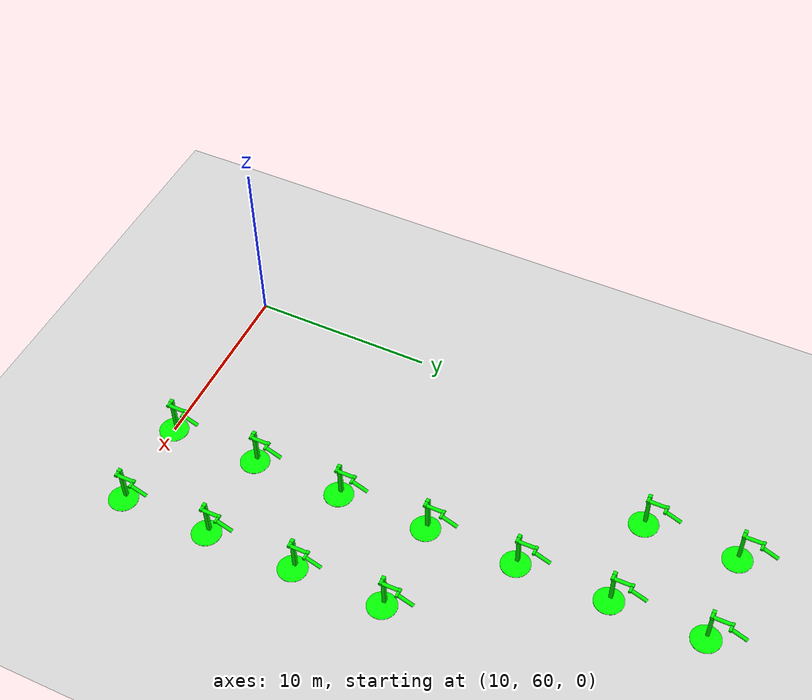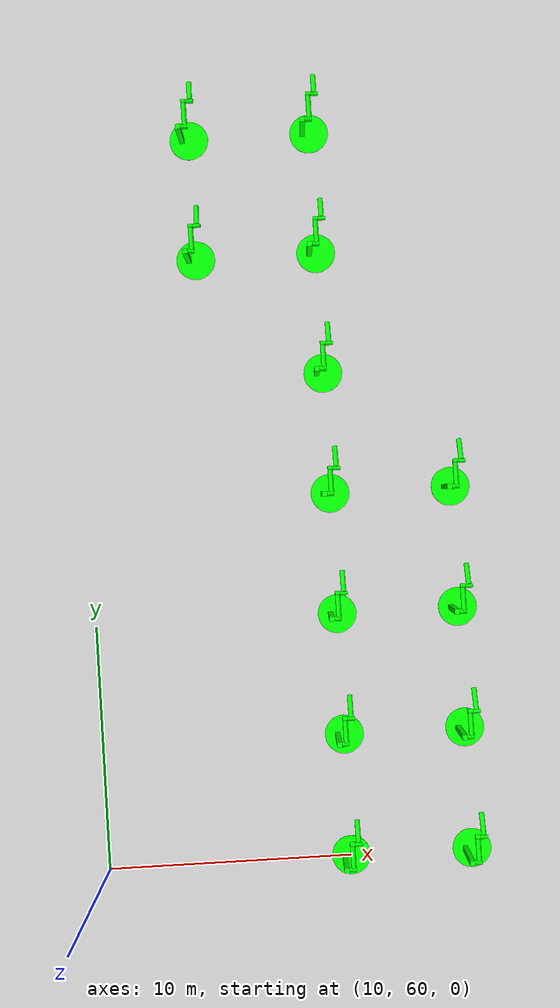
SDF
<sdf version="1.6">
 <world name="double_pendulums">
  <model name="ground_plane">
   <static>true</static>
   <link name="link">
    <collision name="collision">
     <geometry><plane><normal>0 0 1</normal><size>100 100</size></plane></geometry>
    </collision>
    <visual name="visual">
     <geometry><plane><normal>0 0 1</normal><size>100 100</size></plane></geometry>
     <material>
      <ambient>0.8 0.8 0.8 1</ambient>
      <diffuse>0.8 0.8 0.8 1</diffuse>
      <specular>0.8 0.8 0.8 1</specular>
     </material>
    </visual>
   </link>
  </model>
  <model name="dbl_pendulum_314">
   <pose>20 60 0 0 0 0</pose>
   <link name="base">
    <inertial><mass>100</mass></inertial>
    <visual name="vis_plate_on_ground">
     <pose>0 0 0.01 0 0 0</pose>
     <geometry><cylinder><radius>0.8</radius><length>0.02</length></cylinder></geometry>
     <material><ambient>0 1 0 1</ambient><diffuse>0 1 0 1</diffuse><specular>0 1 0 1</specular></material>
    </visual>
    <visual name="vis_pole">
     <pose>-0.275 0 1.1 0 0 0</pose>
     <geometry><box><size>0.2 0.2 2.2</size></box></geometry>
     <material><ambient>0 1 0 1</ambient><diffuse>0 1 0 1</diffuse><specular>0 1 0 1</specular></material>
    </visual>
    <collision name="col_plate_on_ground">
     <pose>0 0 0.01 0 0 0</pose>
     <geometry><cylinder><radius>0.8</radius><length>0.02</length></cylinder></geometry>
    </collision>
    <collision name="col_pole">
     <pose>-0.275 0 1.1 0 0 0</pose>
     <geometry><box><size>0.2 0.2 2.2</size></box></geometry>
    </collision>
   </link>
   <link name="upper_link">
    <pose>0 0 2.1 -1.5708 0 0</pose>
    <inertial><pose>0 0 0.5 0 0 0</pose></inertial>
    <visual name="vis_upper_joint">
     <pose>-0.05 0 0 0 1.5708 0</pose>
     <geometry><cylinder><radius>0.1</radius><length>0.3</length></cylinder></geometry>
     <material><ambient>0 1 0 1</ambient><diffuse>0 1 0 1</diffuse><specular>0 1 0 1</specular></material>
    </visual>
    <visual name="vis_lower_joint">
     <pose>0 0 1.0 0 1.5708 0</pose>
     <geometry><cylinder><radius>0.1</radius><length>0.2</length></cylinder></geometry>
     <material><ambient>0 1 0 1</ambient><diffuse>0 1 0 1</diffuse><specular>0 1 0 1</specular></material>
    </visual>
    <visual name="vis_cylinder">
     <pose>0 0 0.5 0 0 0</pose>
     <geometry><cylinder><radius>0.1</radius><length>0.9</length></cylinder></geometry>
     <material><ambient>0 1 0 1</ambient><diffuse>0 1 0 1</diffuse><specular>0 1 0 1</specular></material>
    </visual>
    <collision name="col_upper_joint">
     <pose>-0.05 0 0 0 1.5708 0</pose>
     <geometry><cylinder><radius>0.1</radius><length>0.3</length></cylinder></geometry>
    </collision>
    <collision name="col_lower_joint">
     <pose>0 0 1.0 0 1.5708 0</pose>
     <geometry><cylinder><radius>0.1</radius><length>0.2</length></cylinder></geometry>
    </collision>
    <collision name="col_cylinder">
     <pose>0 0 0.5 0 0 0</pose>
     <geometry><cylinder><radius>0.1</radius><length>0.9</length></cylinder></geometry>
    </collision>
   </link>
   <link name="lower_link">
    <pose>0.25 1.0 2.1 -2 0 0</pose>
    <inertial><pose>0 0 0.5 0 0 0</pose></inertial>
    <visual name="vis_lower_joint">
     <pose>0 0 0 0 1.5708 0</pose>
     <geometry><cylinder><radius>0.08</radius><length>0.3</length></cylinder></geometry>
     <material><ambient>0 1 0 1</ambient><diffuse>0 1 0 1</diffuse><specular>0 1 0 1</specular></material>
    </visual>
    <visual name="vis_cylinder">
     <pose>0 0 0.5 0 0 0</pose>
     <geometry><cylinder><radius>0.1</radius><length>0.9</length></cylinder></geometry>
     <material><ambient>0 1 0 1</ambient><diffuse>0 1 0 1</diffuse><specular>0 1 0 1</specular></material>
    </visual>
    <collision name="col_lower_joint">
     <pose>0 0 0 0 1.5708 0</pose>
     <geometry><cylinder><radius>0.08</radius><length>0.3</length></cylinder></geometry>
    </collision>
    <collision name="col_cylinder">
     <pose>0 0 0.5 0 0 0</pose>
     <geometry><cylinder><radius>0.1</radius><length>0.9</length></cylinder></geometry>
    </collision>
   </link>
   <joint name="upper_joint" type="revolute">
    <parent>base</parent>
    <child>upper_link</child>
    <axis><xyz>1.0 0 0</xyz></axis>
   </joint>
   <joint name="lower_joint" type="revolute">
    <parent>upper_link</parent>
    <child>lower_link</child>
    <axis><xyz>1.0 0 0</xyz></axis>
   </joint>
  </model>
  <model name="dbl_pendulum_315">
   <pose>25 60 0 0 0 0</pose>
   <link name="base">
    <inertial><mass>100</mass></inertial>
    <visual name="vis_plate_on_ground">
     <pose>0 0 0.01 0 0 0</pose>
     <geometry><cylinder><radius>0.8</radius><length>0.02</length></cylinder></geometry>
     <material><ambient>0 1 0 1</ambient><diffuse>0 1 0 1</diffuse><specular>0 1 0 1</specular></material>
    </visual>
    <visual name="vis_pole">
     <pose>-0.275 0 1.1 0 0 0</pose>
     <geometry><box><size>0.2 0.2 2.2</size></box></geometry>
     <material><ambient>0 1 0 1</ambient><diffuse>0 1 0 1</diffuse><specular>0 1 0 1</specular></material>
    </visual>
    <collision name="col_plate_on_ground">
     <pose>0 0 0.01 0 0 0</pose>
     <geometry><cylinder><radius>0.8</radius><length>0.02</length></cylinder></geometry>
    </collision>
    <collision name="col_pole">
     <pose>-0.275 0 1.1 0 0 0</pose>
     <geometry><box><size>0.2 0.2 2.2</size></box></geometry>
    </collision>
   </link>
   <link name="upper_link">
    <pose>0 0 2.1 -1.5708 0 0</pose>
    <inertial><pose>0 0 0.5 0 0 0</pose></inertial>
    <visual name="vis_upper_joint">
     <pose>-0.05 0 0 0 1.5708 0</pose>
     <geometry><cylinder><radius>0.1</radius><length>0.3</length></cylinder></geometry>
     <material><ambient>0 1 0 1</ambient><diffuse>0 1 0 1</diffuse><specular>0 1 0 1</specular></material>
    </visual>
    <visual name="vis_lower_joint">
     <pose>0 0 1.0 0 1.5708 0</pose>
     <geometry><cylinder><radius>0.1</radius><length>0.2</length></cylinder></geometry>
     <material><ambient>0 1 0 1</ambient><diffuse>0 1 0 1</diffuse><specular>0 1 0 1</specular></material>
    </visual>
    <visual name="vis_cylinder">
     <pose>0 0 0.5 0 0 0</pose>
     <geometry><cylinder><radius>0.1</radius><length>0.9</length></cylinder></geometry>
     <material><ambient>0 1 0 1</ambient><diffuse>0 1 0 1</diffuse><specular>0 1 0 1</specular></material>
    </visual>
    <collision name="col_upper_joint">
     <pose>-0.05 0 0 0 1.5708 0</pose>
     <geometry><cylinder><radius>0.1</radius><length>0.3</length></cylinder></geometry>
    </collision>
    <collision name="col_lower_joint">
     <pose>0 0 1.0 0 1.5708 0</pose>
     <geometry><cylinder><radius>0.1</radius><length>0.2</length></cylinder></geometry>
    </collision>
    <collision name="col_cylinder">
     <pose>0 0 0.5 0 0 0</pose>
     <geometry><cylinder><radius>0.1</radius><length>0.9</length></cylinder></geometry>
    </collision>
   </link>
   <link name="lower_link">
    <pose>0.25 1.0 2.1 -2 0 0</pose>
    <inertial><pose>0 0 0.5 0 0 0</pose></inertial>
    <visual name="vis_lower_joint">
     <pose>0 0 0 0 1.5708 0</pose>
     <geometry><cylinder><radius>0.08</radius><length>0.3</length></cylinder></geometry>
     <material><ambient>0 1 0 1</ambient><diffuse>0 1 0 1</diffuse><specular>0 1 0 1</specular></material>
    </visual>
    <visual name="vis_cylinder">
     <pose>0 0 0.5 0 0 0</pose>
     <geometry><cylinder><radius>0.1</radius><length>0.9</length></cylinder></geometry>
     <material><ambient>0 1 0 1</ambient><diffuse>0 1 0 1</diffuse><specular>0 1 0 1</specular></material>
    </visual>
    <collision name="col_lower_joint">
     <pose>0 0 0 0 1.5708 0</pose>
     <geometry><cylinder><radius>0.08</radius><length>0.3</length></cylinder></geometry>
    </collision>
    <collision name="col_cylinder">
     <pose>0 0 0.5 0 0 0</pose>
     <geometry><cylinder><radius>0.1</radius><length>0.9</length></cylinder></geometry>
    </collision>
   </link>
   <joint name="upper_joint" type="revolute">
    <parent>base</parent>
    <child>upper_link</child>
    <axis><xyz>1.0 0 0</xyz></axis>
   </joint>
   <joint name="lower_joint" type="revolute">
    <parent>upper_link</parent>
    <child>lower_link</child>
    <axis><xyz>1.0 0 0</xyz></axis>
   </joint>
  </model>
  <model name="dbl_pendulum_339">
   <pose>20 65 0 0 0 0</pose>
   <link name="base">
    <inertial><mass>100</mass></inertial>
    <visual name="vis_plate_on_ground">
     <pose>0 0 0.01 0 0 0</pose>
     <geometry><cylinder><radius>0.8</radius><length>0.02</length></cylinder></geometry>
     <material><ambient>0 1 0 1</ambient><diffuse>0 1 0 1</diffuse><specular>0 1 0 1</specular></material>
    </visual>
    <visual name="vis_pole">
     <pose>-0.275 0 1.1 0 0 0</pose>
     <geometry><box><size>0.2 0.2 2.2</size></box></geometry>
     <material><ambient>0 1 0 1</ambient><diffuse>0 1 0 1</diffuse><specular>0 1 0 1</specular></material>
    </visual>
    <collision name="col_plate_on_ground">
     <pose>0 0 0.01 0 0 0</pose>
     <geometry><cylinder><radius>0.8</radius><length>0.02</length></cylinder></geometry>
    </collision>
    <collision name="col_pole">
     <pose>-0.275 0 1.1 0 0 0</pose>
     <geometry><box><size>0.2 0.2 2.2</size></box></geometry>
    </collision>
   </link>
   <link name="upper_link">
    <pose>0 0 2.1 -1.5708 0 0</pose>
    <inertial><pose>0 0 0.5 0 0 0</pose></inertial>
    <visual name="vis_upper_joint">
     <pose>-0.05 0 0 0 1.5708 0</pose>
     <geometry><cylinder><radius>0.1</radius><length>0.3</length></cylinder></geometry>
     <material><ambient>0 1 0 1</ambient><diffuse>0 1 0 1</diffuse><specular>0 1 0 1</specular></material>
    </visual>
    <visual name="vis_lower_joint">
     <pose>0 0 1.0 0 1.5708 0</pose>
     <geometry><cylinder><radius>0.1</radius><length>0.2</length></cylinder></geometry>
     <material><ambient>0 1 0 1</ambient><diffuse>0 1 0 1</diffuse><specular>0 1 0 1</specular></material>
    </visual>
    <visual name="vis_cylinder">
     <pose>0 0 0.5 0 0 0</pose>
     <geometry><cylinder><radius>0.1</radius><length>0.9</length></cylinder></geometry>
     <material><ambient>0 1 0 1</ambient><diffuse>0 1 0 1</diffuse><specular>0 1 0 1</specular></material>
    </visual>
    <collision name="col_upper_joint">
     <pose>-0.05 0 0 0 1.5708 0</pose>
     <geometry><cylinder><radius>0.1</radius><length>0.3</length></cylinder></geometry>
    </collision>
    <collision name="col_lower_joint">
     <pose>0 0 1.0 0 1.5708 0</pose>
     <geometry><cylinder><radius>0.1</radius><length>0.2</length></cylinder></geometry>
    </collision>
    <collision name="col_cylinder">
     <pose>0 0 0.5 0 0 0</pose>
     <geometry><cylinder><radius>0.1</radius><length>0.9</length></cylinder></geometry>
    </collision>
   </link>
   <link name="lower_link">
    <pose>0.25 1.0 2.1 -2 0 0</pose>
    <inertial><pose>0 0 0.5 0 0 0</pose></inertial>
    <visual name="vis_lower_joint">
     <pose>0 0 0 0 1.5708 0</pose>
     <geometry><cylinder><radius>0.08</radius><length>0.3</length></cylinder></geometry>
     <material><ambient>0 1 0 1</ambient><diffuse>0 1 0 1</diffuse><specular>0 1 0 1</specular></material>
    </visual>
    <visual name="vis_cylinder">
     <pose>0 0 0.5 0 0 0</pose>
     <geometry><cylinder><radius>0.1</radius><length>0.9</length></cylinder></geometry>
     <material><ambient>0 1 0 1</ambient><diffuse>0 1 0 1</diffuse><specular>0 1 0 1</specular></material>
    </visual>
    <collision name="col_lower_joint">
     <pose>0 0 0 0 1.5708 0</pose>
     <geometry><cylinder><radius>0.08</radius><length>0.3</length></cylinder></geometry>
    </collision>
    <collision name="col_cylinder">
     <pose>0 0 0.5 0 0 0</pose>
     <geometry><cylinder><radius>0.1</radius><length>0.9</length></cylinder></geometry>
    </collision>
   </link>
   <joint name="upper_joint" type="revolute">
    <parent>base</parent>
    <child>upper_link</child>
    <axis><xyz>1.0 0 0</xyz></axis>
   </joint>
   <joint name="lower_joint" type="revolute">
    <parent>upper_link</parent>
    <child>lower_link</child>
    <axis><xyz>1.0 0 0</xyz></axis>
   </joint>
  </model>
  <model name="dbl_pendulum_340">
   <pose>25 65 0 0 0 0</pose>
   <link name="base">
    <inertial><mass>100</mass></inertial>
    <visual name="vis_plate_on_ground">
     <pose>0 0 0.01 0 0 0</pose>
     <geometry><cylinder><radius>0.8</radius><length>0.02</length></cylinder></geometry>
     <material><ambient>0 1 0 1</ambient><diffuse>0 1 0 1</diffuse><specular>0 1 0 1</specular></material>
    </visual>
    <visual name="vis_pole">
     <pose>-0.275 0 1.1 0 0 0</pose>
     <geometry><box><size>0.2 0.2 2.2</size></box></geometry>
     <material><ambient>0 1 0 1</ambient><diffuse>0 1 0 1</diffuse><specular>0 1 0 1</specular></material>
    </visual>
    <collision name="col_plate_on_ground">
     <pose>0 0 0.01 0 0 0</pose>
     <geometry><cylinder><radius>0.8</radius><length>0.02</length></cylinder></geometry>
    </collision>
    <collision name="col_pole">
     <pose>-0.275 0 1.1 0 0 0</pose>
     <geometry><box><size>0.2 0.2 2.2</size></box></geometry>
    </collision>
   </link>
   <link name="upper_link">
    <pose>0 0 2.1 -1.5708 0 0</pose>
    <inertial><pose>0 0 0.5 0 0 0</pose></inertial>
    <visual name="vis_upper_joint">
     <pose>-0.05 0 0 0 1.5708 0</pose>
     <geometry><cylinder><radius>0.1</radius><length>0.3</length></cylinder></geometry>
     <material><ambient>0 1 0 1</ambient><diffuse>0 1 0 1</diffuse><specular>0 1 0 1</specular></material>
    </visual>
    <visual name="vis_lower_joint">
     <pose>0 0 1.0 0 1.5708 0</pose>
     <geometry><cylinder><radius>0.1</radius><length>0.2</length></cylinder></geometry>
     <material><ambient>0 1 0 1</ambient><diffuse>0 1 0 1</diffuse><specular>0 1 0 1</specular></material>
    </visual>
    <visual name="vis_cylinder">
     <pose>0 0 0.5 0 0 0</pose>
     <geometry><cylinder><radius>0.1</radius><length>0.9</length></cylinder></geometry>
     <material><ambient>0 1 0 1</ambient><diffuse>0 1 0 1</diffuse><specular>0 1 0 1</specular></material>
    </visual>
    <collision name="col_upper_joint">
     <pose>-0.05 0 0 0 1.5708 0</pose>
     <geometry><cylinder><radius>0.1</radius><length>0.3</length></cylinder></geometry>
    </collision>
    <collision name="col_lower_joint">
     <pose>0 0 1.0 0 1.5708 0</pose>
     <geometry><cylinder><radius>0.1</radius><length>0.2</length></cylinder></geometry>
    </collision>
    <collision name="col_cylinder">
     <pose>0 0 0.5 0 0 0</pose>
     <geometry><cylinder><radius>0.1</radius><length>0.9</length></cylinder></geometry>
    </collision>
   </link>
   <link name="lower_link">
    <pose>0.25 1.0 2.1 -2 0 0</pose>
    <inertial><pose>0 0 0.5 0 0 0</pose></inertial>
    <visual name="vis_lower_joint">
     <pose>0 0 0 0 1.5708 0</pose>
     <geometry><cylinder><radius>0.08</radius><length>0.3</length></cylinder></geometry>
     <material><ambient>0 1 0 1</ambient><diffuse>0 1 0 1</diffuse><specular>0 1 0 1</specular></material>
    </visual>
    <visual name="vis_cylinder">
     <pose>0 0 0.5 0 0 0</pose>
     <geometry><cylinder><radius>0.1</radius><length>0.9</length></cylinder></geometry>
     <material><ambient>0 1 0 1</ambient><diffuse>0 1 0 1</diffuse><specular>0 1 0 1</specular></material>
    </visual>
    <collision name="col_lower_joint">
     <pose>0 0 0 0 1.5708 0</pose>
     <geometry><cylinder><radius>0.08</radius><length>0.3</length></cylinder></geometry>
    </collision>
    <collision name="col_cylinder">
     <pose>0 0 0.5 0 0 0</pose>
     <geometry><cylinder><radius>0.1</radius><length>0.9</length></cylinder></geometry>
    </collision>
   </link>
   <joint name="upper_joint" type="revolute">
    <parent>base</parent>
    <child>upper_link</child>
    <axis><xyz>1.0 0 0</xyz></axis>
   </joint>
   <joint name="lower_joint" type="revolute">
    <parent>upper_link</parent>
    <child>lower_link</child>
    <axis><xyz>1.0 0 0</xyz></axis>
   </joint>
  </model>
  <model name="dbl_pendulum_364">
   <pose>20 70 0 0 0 0</pose>
   <link name="base">
    <inertial><mass>100</mass></inertial>
    <visual name="vis_plate_on_ground">
     <pose>0 0 0.01 0 0 0</pose>
     <geometry><cylinder><radius>0.8</radius><length>0.02</length></cylinder></geometry>
     <material><ambient>0 1 0 1</ambient><diffuse>0 1 0 1</diffuse><specular>0 1 0 1</specular></material>
    </visual>
    <visual name="vis_pole">
     <pose>-0.275 0 1.1 0 0 0</pose>
     <geometry><box><size>0.2 0.2 2.2</size></box></geometry>
     <material><ambient>0 1 0 1</ambient><diffuse>0 1 0 1</diffuse><specular>0 1 0 1</specular></material>
    </visual>
    <collision name="col_plate_on_ground">
     <pose>0 0 0.01 0 0 0</pose>
     <geometry><cylinder><radius>0.8</radius><length>0.02</length></cylinder></geometry>
    </collision>
    <collision name="col_pole">
     <pose>-0.275 0 1.1 0 0 0</pose>
     <geometry><box><size>0.2 0.2 2.2</size></box></geometry>
    </collision>
   </link>
   <link name="upper_link">
    <pose>0 0 2.1 -1.5708 0 0</pose>
    <inertial><pose>0 0 0.5 0 0 0</pose></inertial>
    <visual name="vis_upper_joint">
     <pose>-0.05 0 0 0 1.5708 0</pose>
     <geometry><cylinder><radius>0.1</radius><length>0.3</length></cylinder></geometry>
     <material><ambient>0 1 0 1</ambient><diffuse>0 1 0 1</diffuse><specular>0 1 0 1</specular></material>
    </visual>
    <visual name="vis_lower_joint">
     <pose>0 0 1.0 0 1.5708 0</pose>
     <geometry><cylinder><radius>0.1</radius><length>0.2</length></cylinder></geometry>
     <material><ambient>0 1 0 1</ambient><diffuse>0 1 0 1</diffuse><specular>0 1 0 1</specular></material>
    </visual>
    <visual name="vis_cylinder">
     <pose>0 0 0.5 0 0 0</pose>
     <geometry><cylinder><radius>0.1</radius><length>0.9</length></cylinder></geometry>
     <material><ambient>0 1 0 1</ambient><diffuse>0 1 0 1</diffuse><specular>0 1 0 1</specular></material>
    </visual>
    <collision name="col_upper_joint">
     <pose>-0.05 0 0 0 1.5708 0</pose>
     <geometry><cylinder><radius>0.1</radius><length>0.3</length></cylinder></geometry>
    </collision>
    <collision name="col_lower_joint">
     <pose>0 0 1.0 0 1.5708 0</pose>
     <geometry><cylinder><radius>0.1</radius><length>0.2</length></cylinder></geometry>
    </collision>
    <collision name="col_cylinder">
     <pose>0 0 0.5 0 0 0</pose>
     <geometry><cylinder><radius>0.1</radius><length>0.9</length></cylinder></geometry>
    </collision>
   </link>
   <link name="lower_link">
    <pose>0.25 1.0 2.1 -2 0 0</pose>
    <inertial><pose>0 0 0.5 0 0 0</pose></inertial>
    <visual name="vis_lower_joint">
     <pose>0 0 0 0 1.5708 0</pose>
     <geometry><cylinder><radius>0.08</radius><length>0.3</length></cylinder></geometry>
     <material><ambient>0 1 0 1</ambient><diffuse>0 1 0 1</diffuse><specular>0 1 0 1</specular></material>
    </visual>
    <visual name="vis_cylinder">
     <pose>0 0 0.5 0 0 0</pose>
     <geometry><cylinder><radius>0.1</radius><length>0.9</length></cylinder></geometry>
     <material><ambient>0 1 0 1</ambient><diffuse>0 1 0 1</diffuse><specular>0 1 0 1</specular></material>
    </visual>
    <collision name="col_lower_joint">
     <pose>0 0 0 0 1.5708 0</pose>
     <geometry><cylinder><radius>0.08</radius><length>0.3</length></cylinder></geometry>
    </collision>
    <collision name="col_cylinder">
     <pose>0 0 0.5 0 0 0</pose>
     <geometry><cylinder><radius>0.1</radius><length>0.9</length></cylinder></geometry>
    </collision>
   </link>
   <joint name="upper_joint" type="revolute">
    <parent>base</parent>
    <child>upper_link</child>
    <axis><xyz>1.0 0 0</xyz></axis>
   </joint>
   <joint name="lower_joint" type="revolute">
    <parent>upper_link</parent>
    <child>lower_link</child>
    <axis><xyz>1.0 0 0</xyz></axis>
   </joint>
  </model>
  <model name="dbl_pendulum_365">
   <pose>25 70 0 0 0 0</pose>
   <link name="base">
    <inertial><mass>100</mass></inertial>
    <visual name="vis_plate_on_ground">
     <pose>0 0 0.01 0 0 0</pose>
     <geometry><cylinder><radius>0.8</radius><length>0.02</length></cylinder></geometry>
     <material><ambient>0 1 0 1</ambient><diffuse>0 1 0 1</diffuse><specular>0 1 0 1</specular></material>
    </visual>
    <visual name="vis_pole">
     <pose>-0.275 0 1.1 0 0 0</pose>
     <geometry><box><size>0.2 0.2 2.2</size></box></geometry>
     <material><ambient>0 1 0 1</ambient><diffuse>0 1 0 1</diffuse><specular>0 1 0 1</specular></material>
    </visual>
    <collision name="col_plate_on_ground">
     <pose>0 0 0.01 0 0 0</pose>
     <geometry><cylinder><radius>0.8</radius><length>0.02</length></cylinder></geometry>
    </collision>
    <collision name="col_pole">
     <pose>-0.275 0 1.1 0 0 0</pose>
     <geometry><box><size>0.2 0.2 2.2</size></box></geometry>
    </collision>
   </link>
   <link name="upper_link">
    <pose>0 0 2.1 -1.5708 0 0</pose>
    <inertial><pose>0 0 0.5 0 0 0</pose></inertial>
    <visual name="vis_upper_joint">
     <pose>-0.05 0 0 0 1.5708 0</pose>
     <geometry><cylinder><radius>0.1</radius><length>0.3</length></cylinder></geometry>
     <material><ambient>0 1 0 1</ambient><diffuse>0 1 0 1</diffuse><specular>0 1 0 1</specular></material>
    </visual>
    <visual name="vis_lower_joint">
     <pose>0 0 1.0 0 1.5708 0</pose>
     <geometry><cylinder><radius>0.1</radius><length>0.2</length></cylinder></geometry>
     <material><ambient>0 1 0 1</ambient><diffuse>0 1 0 1</diffuse><specular>0 1 0 1</specular></material>
    </visual>
    <visual name="vis_cylinder">
     <pose>0 0 0.5 0 0 0</pose>
     <geometry><cylinder><radius>0.1</radius><length>0.9</length></cylinder></geometry>
     <material><ambient>0 1 0 1</ambient><diffuse>0 1 0 1</diffuse><specular>0 1 0 1</specular></material>
    </visual>
    <collision name="col_upper_joint">
     <pose>-0.05 0 0 0 1.5708 0</pose>
     <geometry><cylinder><radius>0.1</radius><length>0.3</length></cylinder></geometry>
    </collision>
    <collision name="col_lower_joint">
     <pose>0 0 1.0 0 1.5708 0</pose>
     <geometry><cylinder><radius>0.1</radius><length>0.2</length></cylinder></geometry>
    </collision>
    <collision name="col_cylinder">
     <pose>0 0 0.5 0 0 0</pose>
     <geometry><cylinder><radius>0.1</radius><length>0.9</length></cylinder></geometry>
    </collision>
   </link>
   <link name="lower_link">
    <pose>0.25 1.0 2.1 -2 0 0</pose>
    <inertial><pose>0 0 0.5 0 0 0</pose></inertial>
    <visual name="vis_lower_joint">
     <pose>0 0 0 0 1.5708 0</pose>
     <geometry><cylinder><radius>0.08</radius><length>0.3</length></cylinder></geometry>
     <material><ambient>0 1 0 1</ambient><diffuse>0 1 0 1</diffuse><specular>0 1 0 1</specular></material>
    </visual>
    <visual name="vis_cylinder">
     <pose>0 0 0.5 0 0 0</pose>
     <geometry><cylinder><radius>0.1</radius><length>0.9</length></cylinder></geometry>
     <material><ambient>0 1 0 1</ambient><diffuse>0 1 0 1</diffuse><specular>0 1 0 1</specular></material>
    </visual>
    <collision name="col_lower_joint">
     <pose>0 0 0 0 1.5708 0</pose>
     <geometry><cylinder><radius>0.08</radius><length>0.3</length></cylinder></geometry>
    </collision>
    <collision name="col_cylinder">
     <pose>0 0 0.5 0 0 0</pose>
     <geometry><cylinder><radius>0.1</radius><length>0.9</length></cylinder></geometry>
    </collision>
   </link>
   <joint name="upper_joint" type="revolute">
    <parent>base</parent>
    <child>upper_link</child>
    <axis><xyz>1.0 0 0</xyz></axis>
   </joint>
   <joint name="lower_joint" type="revolute">
    <parent>upper_link</parent>
    <child>lower_link</child>
    <axis><xyz>1.0 0 0</xyz></axis>
   </joint>
  </model>
  <model name="dbl_pendulum_389">
   <pose>20 75 0 0 0 0</pose>
   <link name="base">
    <inertial><mass>100</mass></inertial>
    <visual name="vis_plate_on_ground">
     <pose>0 0 0.01 0 0 0</pose>
     <geometry><cylinder><radius>0.8</radius><length>0.02</length></cylinder></geometry>
     <material><ambient>0 1 0 1</ambient><diffuse>0 1 0 1</diffuse><specular>0 1 0 1</specular></material>
    </visual>
    <visual name="vis_pole">
     <pose>-0.275 0 1.1 0 0 0</pose>
     <geometry><box><size>0.2 0.2 2.2</size></box></geometry>
     <material><ambient>0 1 0 1</ambient><diffuse>0 1 0 1</diffuse><specular>0 1 0 1</specular></material>
    </visual>
    <collision name="col_plate_on_ground">
     <pose>0 0 0.01 0 0 0</pose>
     <geometry><cylinder><radius>0.8</radius><length>0.02</length></cylinder></geometry>
    </collision>
    <collision name="col_pole">
     <pose>-0.275 0 1.1 0 0 0</pose>
     <geometry><box><size>0.2 0.2 2.2</size></box></geometry>
    </collision>
   </link>
   <link name="upper_link">
    <pose>0 0 2.1 -1.5708 0 0</pose>
    <inertial><pose>0 0 0.5 0 0 0</pose></inertial>
    <visual name="vis_upper_joint">
     <pose>-0.05 0 0 0 1.5708 0</pose>
     <geometry><cylinder><radius>0.1</radius><length>0.3</length></cylinder></geometry>
     <material><ambient>0 1 0 1</ambient><diffuse>0 1 0 1</diffuse><specular>0 1 0 1</specular></material>
    </visual>
    <visual name="vis_lower_joint">
     <pose>0 0 1.0 0 1.5708 0</pose>
     <geometry><cylinder><radius>0.1</radius><length>0.2</length></cylinder></geometry>
     <material><ambient>0 1 0 1</ambient><diffuse>0 1 0 1</diffuse><specular>0 1 0 1</specular></material>
    </visual>
    <visual name="vis_cylinder">
     <pose>0 0 0.5 0 0 0</pose>
     <geometry><cylinder><radius>0.1</radius><length>0.9</length></cylinder></geometry>
     <material><ambient>0 1 0 1</ambient><diffuse>0 1 0 1</diffuse><specular>0 1 0 1</specular></material>
    </visual>
    <collision name="col_upper_joint">
     <pose>-0.05 0 0 0 1.5708 0</pose>
     <geometry><cylinder><radius>0.1</radius><length>0.3</length></cylinder></geometry>
    </collision>
    <collision name="col_lower_joint">
     <pose>0 0 1.0 0 1.5708 0</pose>
     <geometry><cylinder><radius>0.1</radius><length>0.2</length></cylinder></geometry>
    </collision>
    <collision name="col_cylinder">
     <pose>0 0 0.5 0 0 0</pose>
     <geometry><cylinder><radius>0.1</radius><length>0.9</length></cylinder></geometry>
    </collision>
   </link>
   <link name="lower_link">
    <pose>0.25 1.0 2.1 -2 0 0</pose>
    <inertial><pose>0 0 0.5 0 0 0</pose></inertial>
    <visual name="vis_lower_joint">
     <pose>0 0 0 0 1.5708 0</pose>
     <geometry><cylinder><radius>0.08</radius><length>0.3</length></cylinder></geometry>
     <material><ambient>0 1 0 1</ambient><diffuse>0 1 0 1</diffuse><specular>0 1 0 1</specular></material>
    </visual>
    <visual name="vis_cylinder">
     <pose>0 0 0.5 0 0 0</pose>
     <geometry><cylinder><radius>0.1</radius><length>0.9</length></cylinder></geometry>
     <material><ambient>0 1 0 1</ambient><diffuse>0 1 0 1</diffuse><specular>0 1 0 1</specular></material>
    </visual>
    <collision name="col_lower_joint">
     <pose>0 0 0 0 1.5708 0</pose>
     <geometry><cylinder><radius>0.08</radius><length>0.3</length></cylinder></geometry>
    </collision>
    <collision name="col_cylinder">
     <pose>0 0 0.5 0 0 0</pose>
     <geometry><cylinder><radius>0.1</radius><length>0.9</length></cylinder></geometry>
    </collision>
   </link>
   <joint name="upper_joint" type="revolute">
    <parent>base</parent>
    <child>upper_link</child>
    <axis><xyz>1.0 0 0</xyz></axis>
   </joint>
   <joint name="lower_joint" type="revolute">
    <parent>upper_link</parent>
    <child>lower_link</child>
    <axis><xyz>1.0 0 0</xyz></axis>
   </joint>
  </model>
  <model name="dbl_pendulum_390">
   <pose>25 75 0 0 0 0</pose>
   <link name="base">
    <inertial><mass>100</mass></inertial>
    <visual name="vis_plate_on_ground">
     <pose>0 0 0.01 0 0 0</pose>
     <geometry><cylinder><radius>0.8</radius><length>0.02</length></cylinder></geometry>
     <material><ambient>0 1 0 1</ambient><diffuse>0 1 0 1</diffuse><specular>0 1 0 1</specular></material>
    </visual>
    <visual name="vis_pole">
     <pose>-0.275 0 1.1 0 0 0</pose>
     <geometry><box><size>0.2 0.2 2.2</size></box></geometry>
     <material><ambient>0 1 0 1</ambient><diffuse>0 1 0 1</diffuse><specular>0 1 0 1</specular></material>
    </visual>
    <collision name="col_plate_on_ground">
     <pose>0 0 0.01 0 0 0</pose>
     <geometry><cylinder><radius>0.8</radius><length>0.02</length></cylinder></geometry>
    </collision>
    <collision name="col_pole">
     <pose>-0.275 0 1.1 0 0 0</pose>
     <geometry><box><size>0.2 0.2 2.2</size></box></geometry>
    </collision>
   </link>
   <link name="upper_link">
    <pose>0 0 2.1 -1.5708 0 0</pose>
    <inertial><pose>0 0 0.5 0 0 0</pose></inertial>
    <visual name="vis_upper_joint">
     <pose>-0.05 0 0 0 1.5708 0</pose>
     <geometry><cylinder><radius>0.1</radius><length>0.3</length></cylinder></geometry>
     <material><ambient>0 1 0 1</ambient><diffuse>0 1 0 1</diffuse><specular>0 1 0 1</specular></material>
    </visual>
    <visual name="vis_lower_joint">
     <pose>0 0 1.0 0 1.5708 0</pose>
     <geometry><cylinder><radius>0.1</radius><length>0.2</length></cylinder></geometry>
     <material><ambient>0 1 0 1</ambient><diffuse>0 1 0 1</diffuse><specular>0 1 0 1</specular></material>
    </visual>
    <visual name="vis_cylinder">
     <pose>0 0 0.5 0 0 0</pose>
     <geometry><cylinder><radius>0.1</radius><length>0.9</length></cylinder></geometry>
     <material><ambient>0 1 0 1</ambient><diffuse>0 1 0 1</diffuse><specular>0 1 0 1</specular></material>
    </visual>
    <collision name="col_upper_joint">
     <pose>-0.05 0 0 0 1.5708 0</pose>
     <geometry><cylinder><radius>0.1</radius><length>0.3</length></cylinder></geometry>
    </collision>
    <collision name="col_lower_joint">
     <pose>0 0 1.0 0 1.5708 0</pose>
     <geometry><cylinder><radius>0.1</radius><length>0.2</length></cylinder></geometry>
    </collision>
    <collision name="col_cylinder">
     <pose>0 0 0.5 0 0 0</pose>
     <geometry><cylinder><radius>0.1</radius><length>0.9</length></cylinder></geometry>
    </collision>
   </link>
   <link name="lower_link">
    <pose>0.25 1.0 2.1 -2 0 0</pose>
    <inertial><pose>0 0 0.5 0 0 0</pose></inertial>
    <visual name="vis_lower_joint">
     <pose>0 0 0 0 1.5708 0</pose>
     <geometry><cylinder><radius>0.08</radius><length>0.3</length></cylinder></geometry>
     <material><ambient>0 1 0 1</ambient><diffuse>0 1 0 1</diffuse><specular>0 1 0 1</specular></material>
    </visual>
    <visual name="vis_cylinder">
     <pose>0 0 0.5 0 0 0</pose>
     <geometry><cylinder><radius>0.1</radius><length>0.9</length></cylinder></geometry>
     <material><ambient>0 1 0 1</ambient><diffuse>0 1 0 1</diffuse><specular>0 1 0 1</specular></material>
    </visual>
    <collision name="col_lower_joint">
     <pose>0 0 0 0 1.5708 0</pose>
     <geometry><cylinder><radius>0.08</radius><length>0.3</length></cylinder></geometry>
    </collision>
    <collision name="col_cylinder">
     <pose>0 0 0.5 0 0 0</pose>
     <geometry><cylinder><radius>0.1</radius><length>0.9</length></cylinder></geometry>
    </collision>
   </link>
   <joint name="upper_joint" type="revolute">
    <parent>base</parent>
    <child>upper_link</child>
    <axis><xyz>1.0 0 0</xyz></axis>
   </joint>
   <joint name="lower_joint" type="revolute">
    <parent>upper_link</parent>
    <child>lower_link</child>
    <axis><xyz>1.0 0 0</xyz></axis>
   </joint>
  </model>
  <model name="dbl_pendulum_414">
   <pose>20 80 0 0 0 0</pose>
   <link name="base">
    <inertial><mass>100</mass></inertial>
    <visual name="vis_plate_on_ground">
     <pose>0 0 0.01 0 0 0</pose>
     <geometry><cylinder><radius>0.8</radius><length>0.02</length></cylinder></geometry>
     <material><ambient>0 1 0 1</ambient><diffuse>0 1 0 1</diffuse><specular>0 1 0 1</specular></material>
    </visual>
    <visual name="vis_pole">
     <pose>-0.275 0 1.1 0 0 0</pose>
     <geometry><box><size>0.2 0.2 2.2</size></box></geometry>
     <material><ambient>0 1 0 1</ambient><diffuse>0 1 0 1</diffuse><specular>0 1 0 1</specular></material>
    </visual>
    <collision name="col_plate_on_ground">
     <pose>0 0 0.01 0 0 0</pose>
     <geometry><cylinder><radius>0.8</radius><length>0.02</length></cylinder></geometry>
    </collision>
    <collision name="col_pole">
     <pose>-0.275 0 1.1 0 0 0</pose>
     <geometry><box><size>0.2 0.2 2.2</size></box></geometry>
    </collision>
   </link>
   <link name="upper_link">
    <pose>0 0 2.1 -1.5708 0 0</pose>
    <inertial><pose>0 0 0.5 0 0 0</pose></inertial>
    <visual name="vis_upper_joint">
     <pose>-0.05 0 0 0 1.5708 0</pose>
     <geometry><cylinder><radius>0.1</radius><length>0.3</length></cylinder></geometry>
     <material><ambient>0 1 0 1</ambient><diffuse>0 1 0 1</diffuse><specular>0 1 0 1</specular></material>
    </visual>
    <visual name="vis_lower_joint">
     <pose>0 0 1.0 0 1.5708 0</pose>
     <geometry><cylinder><radius>0.1</radius><length>0.2</length></cylinder></geometry>
     <material><ambient>0 1 0 1</ambient><diffuse>0 1 0 1</diffuse><specular>0 1 0 1</specular></material>
    </visual>
    <visual name="vis_cylinder">
     <pose>0 0 0.5 0 0 0</pose>
     <geometry><cylinder><radius>0.1</radius><length>0.9</length></cylinder></geometry>
     <material><ambient>0 1 0 1</ambient><diffuse>0 1 0 1</diffuse><specular>0 1 0 1</specular></material>
    </visual>
    <collision name="col_upper_joint">
     <pose>-0.05 0 0 0 1.5708 0</pose>
     <geometry><cylinder><radius>0.1</radius><length>0.3</length></cylinder></geometry>
    </collision>
    <collision name="col_lower_joint">
     <pose>0 0 1.0 0 1.5708 0</pose>
     <geometry><cylinder><radius>0.1</radius><length>0.2</length></cylinder></geometry>
    </collision>
    <collision name="col_cylinder">
     <pose>0 0 0.5 0 0 0</pose>
     <geometry><cylinder><radius>0.1</radius><length>0.9</length></cylinder></geometry>
    </collision>
   </link>
   <link name="lower_link">
    <pose>0.25 1.0 2.1 -2 0 0</pose>
    <inertial><pose>0 0 0.5 0 0 0</pose></inertial>
    <visual name="vis_lower_joint">
     <pose>0 0 0 0 1.5708 0</pose>
     <geometry><cylinder><radius>0.08</radius><length>0.3</length></cylinder></geometry>
     <material><ambient>0 1 0 1</ambient><diffuse>0 1 0 1</diffuse><specular>0 1 0 1</specular></material>
    </visual>
    <visual name="vis_cylinder">
     <pose>0 0 0.5 0 0 0</pose>
     <geometry><cylinder><radius>0.1</radius><length>0.9</length></cylinder></geometry>
     <material><ambient>0 1 0 1</ambient><diffuse>0 1 0 1</diffuse><specular>0 1 0 1</specular></material>
    </visual>
    <collision name="col_lower_joint">
     <pose>0 0 0 0 1.5708 0</pose>
     <geometry><cylinder><radius>0.08</radius><length>0.3</length></cylinder></geometry>
    </collision>
    <collision name="col_cylinder">
     <pose>0 0 0.5 0 0 0</pose>
     <geometry><cylinder><radius>0.1</radius><length>0.9</length></cylinder></geometry>
    </collision>
   </link>
   <joint name="upper_joint" type="revolute">
    <parent>base</parent>
    <child>upper_link</child>
    <axis><xyz>1.0 0 0</xyz></axis>
   </joint>
   <joint name="lower_joint" type="revolute">
    <parent>upper_link</parent>
    <child>lower_link</child>
    <axis><xyz>1.0 0 0</xyz></axis>
   </joint>
  </model>
  <model name="dbl_pendulum_438">
   <pose>15 85 0 0 0 0</pose>
   <link name="base">
    <inertial><mass>100</mass></inertial>
    <visual name="vis_plate_on_ground">
     <pose>0 0 0.01 0 0 0</pose>
     <geometry><cylinder><radius>0.8</radius><length>0.02</length></cylinder></geometry>
     <material><ambient>0 1 0 1</ambient><diffuse>0 1 0 1</diffuse><specular>0 1 0 1</specular></material>
    </visual>
    <visual name="vis_pole">
     <pose>-0.275 0 1.1 0 0 0</pose>
     <geometry><box><size>0.2 0.2 2.2</size></box></geometry>
     <material><ambient>0 1 0 1</ambient><diffuse>0 1 0 1</diffuse><specular>0 1 0 1</specular></material>
    </visual>
    <collision name="col_plate_on_ground">
     <pose>0 0 0.01 0 0 0</pose>
     <geometry><cylinder><radius>0.8</radius><length>0.02</length></cylinder></geometry>
    </collision>
    <collision name="col_pole">
     <pose>-0.275 0 1.1 0 0 0</pose>
     <geometry><box><size>0.2 0.2 2.2</size></box></geometry>
    </collision>
   </link>
   <link name="upper_link">
    <pose>0 0 2.1 -1.5708 0 0</pose>
    <inertial><pose>0 0 0.5 0 0 0</pose></inertial>
    <visual name="vis_upper_joint">
     <pose>-0.05 0 0 0 1.5708 0</pose>
     <geometry><cylinder><radius>0.1</radius><length>0.3</length></cylinder></geometry>
     <material><ambient>0 1 0 1</ambient><diffuse>0 1 0 1</diffuse><specular>0 1 0 1</specular></material>
    </visual>
    <visual name="vis_lower_joint">
     <pose>0 0 1.0 0 1.5708 0</pose>
     <geometry><cylinder><radius>0.1</radius><length>0.2</length></cylinder></geometry>
     <material><ambient>0 1 0 1</ambient><diffuse>0 1 0 1</diffuse><specular>0 1 0 1</specular></material>
    </visual>
    <visual name="vis_cylinder">
     <pose>0 0 0.5 0 0 0</pose>
     <geometry><cylinder><radius>0.1</radius><length>0.9</length></cylinder></geometry>
     <material><ambient>0 1 0 1</ambient><diffuse>0 1 0 1</diffuse><specular>0 1 0 1</specular></material>
    </visual>
    <collision name="col_upper_joint">
     <pose>-0.05 0 0 0 1.5708 0</pose>
     <geometry><cylinder><radius>0.1</radius><length>0.3</length></cylinder></geometry>
    </collision>
    <collision name="col_lower_joint">
     <pose>0 0 1.0 0 1.5708 0</pose>
     <geometry><cylinder><radius>0.1</radius><length>0.2</length></cylinder></geometry>
    </collision>
    <collision name="col_cylinder">
     <pose>0 0 0.5 0 0 0</pose>
     <geometry><cylinder><radius>0.1</radius><length>0.9</length></cylinder></geometry>
    </collision>
   </link>
   <link name="lower_link">
    <pose>0.25 1.0 2.1 -2 0 0</pose>
    <inertial><pose>0 0 0.5 0 0 0</pose></inertial>
    <visual name="vis_lower_joint">
     <pose>0 0 0 0 1.5708 0</pose>
     <geometry><cylinder><radius>0.08</radius><length>0.3</length></cylinder></geometry>
     <material><ambient>0 1 0 1</ambient><diffuse>0 1 0 1</diffuse><specular>0 1 0 1</specular></material>
    </visual>
    <visual name="vis_cylinder">
     <pose>0 0 0.5 0 0 0</pose>
     <geometry><cylinder><radius>0.1</radius><length>0.9</length></cylinder></geometry>
     <material><ambient>0 1 0 1</ambient><diffuse>0 1 0 1</diffuse><specular>0 1 0 1</specular></material>
    </visual>
    <collision name="col_lower_joint">
     <pose>0 0 0 0 1.5708 0</pose>
     <geometry><cylinder><radius>0.08</radius><length>0.3</length></cylinder></geometry>
    </collision>
    <collision name="col_cylinder">
     <pose>0 0 0.5 0 0 0</pose>
     <geometry><cylinder><radius>0.1</radius><length>0.9</length></cylinder></geometry>
    </collision>
   </link>
   <joint name="upper_joint" type="revolute">
    <parent>base</parent>
    <child>upper_link</child>
    <axis><xyz>1.0 0 0</xyz></axis>
   </joint>
   <joint name="lower_joint" type="revolute">
    <parent>upper_link</parent>
    <child>lower_link</child>
    <axis><xyz>1.0 0 0</xyz></axis>
   </joint>
  </model>
  <model name="dbl_pendulum_439">
   <pose>20 85 0 0 0 0</pose>
   <link name="base">
    <inertial><mass>100</mass></inertial>
    <visual name="vis_plate_on_ground">
     <pose>0 0 0.01 0 0 0</pose>
     <geometry><cylinder><radius>0.8</radius><length>0.02</length></cylinder></geometry>
     <material><ambient>0 1 0 1</ambient><diffuse>0 1 0 1</diffuse><specular>0 1 0 1</specular></material>
    </visual>
    <visual name="vis_pole">
     <pose>-0.275 0 1.1 0 0 0</pose>
     <geometry><box><size>0.2 0.2 2.2</size></box></geometry>
     <material><ambient>0 1 0 1</ambient><diffuse>0 1 0 1</diffuse><specular>0 1 0 1</specular></material>
    </visual>
    <collision name="col_plate_on_ground">
     <pose>0 0 0.01 0 0 0</pose>
     <geometry><cylinder><radius>0.8</radius><length>0.02</length></cylinder></geometry>
    </collision>
    <collision name="col_pole">
     <pose>-0.275 0 1.1 0 0 0</pose>
     <geometry><box><size>0.2 0.2 2.2</size></box></geometry>
    </collision>
   </link>
   <link name="upper_link">
    <pose>0 0 2.1 -1.5708 0 0</pose>
    <inertial><pose>0 0 0.5 0 0 0</pose></inertial>
    <visual name="vis_upper_joint">
     <pose>-0.05 0 0 0 1.5708 0</pose>
     <geometry><cylinder><radius>0.1</radius><length>0.3</length></cylinder></geometry>
     <material><ambient>0 1 0 1</ambient><diffuse>0 1 0 1</diffuse><specular>0 1 0 1</specular></material>
    </visual>
    <visual name="vis_lower_joint">
     <pose>0 0 1.0 0 1.5708 0</pose>
     <geometry><cylinder><radius>0.1</radius><length>0.2</length></cylinder></geometry>
     <material><ambient>0 1 0 1</ambient><diffuse>0 1 0 1</diffuse><specular>0 1 0 1</specular></material>
    </visual>
    <visual name="vis_cylinder">
     <pose>0 0 0.5 0 0 0</pose>
     <geometry><cylinder><radius>0.1</radius><length>0.9</length></cylinder></geometry>
     <material><ambient>0 1 0 1</ambient><diffuse>0 1 0 1</diffuse><specular>0 1 0 1</specular></material>
    </visual>
    <collision name="col_upper_joint">
     <pose>-0.05 0 0 0 1.5708 0</pose>
     <geometry><cylinder><radius>0.1</radius><length>0.3</length></cylinder></geometry>
    </collision>
    <collision name="col_lower_joint">
     <pose>0 0 1.0 0 1.5708 0</pose>
     <geometry><cylinder><radius>0.1</radius><length>0.2</length></cylinder></geometry>
    </collision>
    <collision name="col_cylinder">
     <pose>0 0 0.5 0 0 0</pose>
     <geometry><cylinder><radius>0.1</radius><length>0.9</length></cylinder></geometry>
    </collision>
   </link>
   <link name="lower_link">
    <pose>0.25 1.0 2.1 -2 0 0</pose>
    <inertial><pose>0 0 0.5 0 0 0</pose></inertial>
    <visual name="vis_lower_joint">
     <pose>0 0 0 0 1.5708 0</pose>
     <geometry><cylinder><radius>0.08</radius><length>0.3</length></cylinder></geometry>
     <material><ambient>0 1 0 1</ambient><diffuse>0 1 0 1</diffuse><specular>0 1 0 1</specular></material>
    </visual>
    <visual name="vis_cylinder">
     <pose>0 0 0.5 0 0 0</pose>
     <geometry><cylinder><radius>0.1</radius><length>0.9</length></cylinder></geometry>
     <material><ambient>0 1 0 1</ambient><diffuse>0 1 0 1</diffuse><specular>0 1 0 1</specular></material>
    </visual>
    <collision name="col_lower_joint">
     <pose>0 0 0 0 1.5708 0</pose>
     <geometry><cylinder><radius>0.08</radius><length>0.3</length></cylinder></geometry>
    </collision>
    <collision name="col_cylinder">
     <pose>0 0 0.5 0 0 0</pose>
     <geometry><cylinder><radius>0.1</radius><length>0.9</length></cylinder></geometry>
    </collision>
   </link>
   <joint name="upper_joint" type="revolute">
    <parent>base</parent>
    <child>upper_link</child>
    <axis><xyz>1.0 0 0</xyz></axis>
   </joint>
   <joint name="lower_joint" type="revolute">
    <parent>upper_link</parent>
    <child>lower_link</child>
    <axis><xyz>1.0 0 0</xyz></axis>
   </joint>
  </model>
  <model name="dbl_pendulum_463">
   <pose>15 90 0 0 0 0</pose>
   <link name="base">
    <inertial><mass>100</mass></inertial>
    <visual name="vis_plate_on_ground">
     <pose>0 0 0.01 0 0 0</pose>
     <geometry><cylinder><radius>0.8</radius><length>0.02</length></cylinder></geometry>
     <material><ambient>0 1 0 1</ambient><diffuse>0 1 0 1</diffuse><specular>0 1 0 1</specular></material>
    </visual>
    <visual name="vis_pole">
     <pose>-0.275 0 1.1 0 0 0</pose>
     <geometry><box><size>0.2 0.2 2.2</size></box></geometry>
     <material><ambient>0 1 0 1</ambient><diffuse>0 1 0 1</diffuse><specular>0 1 0 1</specular></material>
    </visual>
    <collision name="col_plate_on_ground">
     <pose>0 0 0.01 0 0 0</pose>
     <geometry><cylinder><radius>0.8</radius><length>0.02</length></cylinder></geometry>
    </collision>
    <collision name="col_pole">
     <pose>-0.275 0 1.1 0 0 0</pose>
     <geometry><box><size>0.2 0.2 2.2</size></box></geometry>
    </collision>
   </link>
   <link name="upper_link">
    <pose>0 0 2.1 -1.5708 0 0</pose>
    <inertial><pose>0 0 0.5 0 0 0</pose></inertial>
    <visual name="vis_upper_joint">
     <pose>-0.05 0 0 0 1.5708 0</pose>
     <geometry><cylinder><radius>0.1</radius><length>0.3</length></cylinder></geometry>
     <material><ambient>0 1 0 1</ambient><diffuse>0 1 0 1</diffuse><specular>0 1 0 1</specular></material>
    </visual>
    <visual name="vis_lower_joint">
     <pose>0 0 1.0 0 1.5708 0</pose>
     <geometry><cylinder><radius>0.1</radius><length>0.2</length></cylinder></geometry>
     <material><ambient>0 1 0 1</ambient><diffuse>0 1 0 1</diffuse><specular>0 1 0 1</specular></material>
    </visual>
    <visual name="vis_cylinder">
     <pose>0 0 0.5 0 0 0</pose>
     <geometry><cylinder><radius>0.1</radius><length>0.9</length></cylinder></geometry>
     <material><ambient>0 1 0 1</ambient><diffuse>0 1 0 1</diffuse><specular>0 1 0 1</specular></material>
    </visual>
    <collision name="col_upper_joint">
     <pose>-0.05 0 0 0 1.5708 0</pose>
     <geometry><cylinder><radius>0.1</radius><length>0.3</length></cylinder></geometry>
    </collision>
    <collision name="col_lower_joint">
     <pose>0 0 1.0 0 1.5708 0</pose>
     <geometry><cylinder><radius>0.1</radius><length>0.2</length></cylinder></geometry>
    </collision>
    <collision name="col_cylinder">
     <pose>0 0 0.5 0 0 0</pose>
     <geometry><cylinder><radius>0.1</radius><length>0.9</length></cylinder></geometry>
    </collision>
   </link>
   <link name="lower_link">
    <pose>0.25 1.0 2.1 -2 0 0</pose>
    <inertial><pose>0 0 0.5 0 0 0</pose></inertial>
    <visual name="vis_lower_joint">
     <pose>0 0 0 0 1.5708 0</pose>
     <geometry><cylinder><radius>0.08</radius><length>0.3</length></cylinder></geometry>
     <material><ambient>0 1 0 1</ambient><diffuse>0 1 0 1</diffuse><specular>0 1 0 1</specular></material>
    </visual>
    <visual name="vis_cylinder">
     <pose>0 0 0.5 0 0 0</pose>
     <geometry><cylinder><radius>0.1</radius><length>0.9</length></cylinder></geometry>
     <material><ambient>0 1 0 1</ambient><diffuse>0 1 0 1</diffuse><specular>0 1 0 1</specular></material>
    </visual>
    <collision name="col_lower_joint">
     <pose>0 0 0 0 1.5708 0</pose>
     <geometry><cylinder><radius>0.08</radius><length>0.3</length></cylinder></geometry>
    </collision>
    <collision name="col_cylinder">
     <pose>0 0 0.5 0 0 0</pose>
     <geometry><cylinder><radius>0.1</radius><length>0.9</length></cylinder></geometry>
    </collision>
   </link>
   <joint name="upper_joint" type="revolute">
    <parent>base</parent>
    <child>upper_link</child>
    <axis><xyz>1.0 0 0</xyz></axis>
   </joint>
   <joint name="lower_joint" type="revolute">
    <parent>upper_link</parent>
    <child>lower_link</child>
    <axis><xyz>1.0 0 0</xyz></axis>
   </joint>
  </model>
  <model name="dbl_pendulum_464">
   <pose>20 90 0 0 0 0</pose>
   <link name="base">
    <inertial><mass>100</mass></inertial>
    <visual name="vis_plate_on_ground">
     <pose>0 0 0.01 0 0 0</pose>
     <geometry><cylinder><radius>0.8</radius><length>0.02</length></cylinder></geometry>
     <material><ambient>0 1 0 1</ambient><diffuse>0 1 0 1</diffuse><specular>0 1 0 1</specular></material>
    </visual>
    <visual name="vis_pole">
     <pose>-0.275 0 1.1 0 0 0</pose>
     <geometry><box><size>0.2 0.2 2.2</size></box></geometry>
     <material><ambient>0 1 0 1</ambient><diffuse>0 1 0 1</diffuse><specular>0 1 0 1</specular></material>
    </visual>
    <collision name="col_plate_on_ground">
     <pose>0 0 0.01 0 0 0</pose>
     <geometry><cylinder><radius>0.8</radius><length>0.02</length></cylinder></geometry>
    </collision>
    <collision name="col_pole">
     <pose>-0.275 0 1.1 0 0 0</pose>
     <geometry><box><size>0.2 0.2 2.2</size></box></geometry>
    </collision>
   </link>
   <link name="upper_link">
    <pose>0 0 2.1 -1.5708 0 0</pose>
    <inertial><pose>0 0 0.5 0 0 0</pose></inertial>
    <visual name="vis_upper_joint">
     <pose>-0.05 0 0 0 1.5708 0</pose>
     <geometry><cylinder><radius>0.1</radius><length>0.3</length></cylinder></geometry>
     <material><ambient>0 1 0 1</ambient><diffuse>0 1 0 1</diffuse><specular>0 1 0 1</specular></material>
    </visual>
    <visual name="vis_lower_joint">
     <pose>0 0 1.0 0 1.5708 0</pose>
     <geometry><cylinder><radius>0.1</radius><length>0.2</length></cylinder></geometry>
     <material><ambient>0 1 0 1</ambient><diffuse>0 1 0 1</diffuse><specular>0 1 0 1</specular></material>
    </visual>
    <visual name="vis_cylinder">
     <pose>0 0 0.5 0 0 0</pose>
     <geometry><cylinder><radius>0.1</radius><length>0.9</length></cylinder></geometry>
     <material><ambient>0 1 0 1</ambient><diffuse>0 1 0 1</diffuse><specular>0 1 0 1</specular></material>
    </visual>
    <collision name="col_upper_joint">
     <pose>-0.05 0 0 0 1.5708 0</pose>
     <geometry><cylinder><radius>0.1</radius><length>0.3</length></cylinder></geometry>
    </collision>
    <collision name="col_lower_joint">
     <pose>0 0 1.0 0 1.5708 0</pose>
     <geometry><cylinder><radius>0.1</radius><length>0.2</length></cylinder></geometry>
    </collision>
    <collision name="col_cylinder">
     <pose>0 0 0.5 0 0 0</pose>
     <geometry><cylinder><radius>0.1</radius><length>0.9</length></cylinder></geometry>
    </collision>
   </link>
   <link name="lower_link">
    <pose>0.25 1.0 2.1 -2 0 0</pose>
    <inertial><pose>0 0 0.5 0 0 0</pose></inertial>
    <visual name="vis_lower_joint">
     <pose>0 0 0 0 1.5708 0</pose>
     <geometry><cylinder><radius>0.08</radius><length>0.3</length></cylinder></geometry>
     <material><ambient>0 1 0 1</ambient><diffuse>0 1 0 1</diffuse><specular>0 1 0 1</specular></material>
    </visual>
    <visual name="vis_cylinder">
     <pose>0 0 0.5 0 0 0</pose>
     <geometry><cylinder><radius>0.1</radius><length>0.9</length></cylinder></geometry>
     <material><ambient>0 1 0 1</ambient><diffuse>0 1 0 1</diffuse><specular>0 1 0 1</specular></material>
    </visual>
    <collision name="col_lower_joint">
     <pose>0 0 0 0 1.5708 0</pose>
     <geometry><cylinder><radius>0.08</radius><length>0.3</length></cylinder></geometry>
    </collision>
    <collision name="col_cylinder">
     <pose>0 0 0.5 0 0 0</pose>
     <geometry><cylinder><radius>0.1</radius><length>0.9</length></cylinder></geometry>
    </collision>
   </link>
   <joint name="upper_joint" type="revolute">
    <parent>base</parent>
    <child>upper_link</child>
    <axis><xyz>1.0 0 0</xyz></axis>
   </joint>
   <joint name="lower_joint" type="revolute">
    <parent>upper_link</parent>
    <child>lower_link</child>
    <axis><xyz>1.0 0 0</xyz></axis>
   </joint>
  </model>
 </world>
</sdf>
